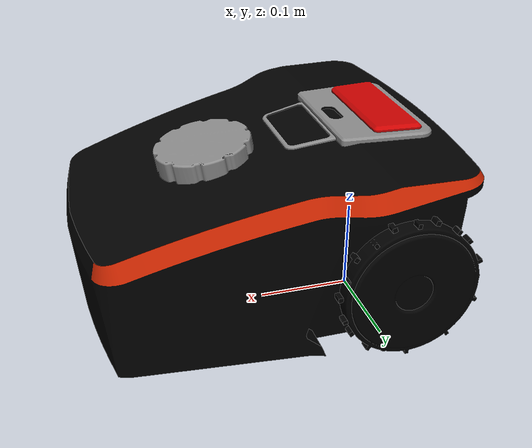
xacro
<?xml version="1.0"?>
<robot xmlns:xacro="http://www.ros.org/wiki/xacro"  name="robot">

    <xacro:property name="m1" value="5"/>   <!-- mass of body-->
    <xacro:property name="mw" value="0.168"/> <!-- mass of wheels-->

    <!-- Estimated Inertia-->
    <xacro:property name="Ix_body" value="{(1/12)*m1*(0.3*0.3+0.2*0.2)}"/>
    <xacro:property name="Iy_body" value="{(1/12)*m1*(0.4*0.4+0.3*0.3)}"/>
    <xacro:property name="Iz_body" value="{(1/12)*m1*(0.4*0.4+0.2*0.2)}"/>

    <xacro:property name="skid_mass" value="0.05"/> <!-- Mass of each skid -->
    <xacro:property name="skid_radius" value="0.02"/> <!-- Radius of the skid (capsule) -->
    <xacro:property name="skid_length" value="0.1"/> <!-- Length of the skid (capsule) -->

    <!-- Calculate Inertia for a Capsule -->
    <xacro:property name="inertia_xx" value="${(1/12) * skid_mass * (3 * skid_radius * skid_radius + skid_length * skid_length)}"/>
    <xacro:property name="inertia_yy" value="${(1/12) * skid_mass * (3 * skid_radius * skid_radius + skid_length * skid_length)}"/>
    <xacro:property name="inertia_zz" value="${(1/2) * skid_mass * skid_radius * skid_radius}"/>

    <!-- Wheel Inertia (calculated) -->
    <xacro:property name="radius_wheel" value="0.08"/>  <!-- radius of wheel -->
    <xacro:property name="Ixx_wheel" value="${(1.0/4.0) * mw * radius_wheel * radius_wheel}"/> <!-- inertia about x-axis -->
    <xacro:property name="Iyy_wheel" value="${(1.0/4.0) * mw * radius_wheel * radius_wheel}"/> <!-- inertia about y-axis -->
    <xacro:property name="Izz_wheel" value="${(1.0/2.0) * mw * radius_wheel * radius_wheel}"/> <!-- inertia about z-axis -->

    <xacro:macro name="inertia_body">
        <inertial>
            <origin xyz="0.15 0.0 0.06" rpy="0.0 0.0 0.0"/>
            <mass value="${m1}"/>
            <inertia ixx="${Ix_body}" ixy="0.0" ixz="0.0" iyy="${Iy_body}" iyz="0.0" izz="${Iz_body}"/>
        </inertial>
    </xacro:macro>

    <xacro:macro name="inertia_wheel">
        <inertial>
            <origin xyz="0.0 0.0 0.0" rpy="1.5707 0.0 0.0"/>
            <mass value="${mw}"/>
            <inertia ixx="${Ixx_wheel}" ixy="0.0" ixz="0.0" iyy="${Iyy_wheel}" iyz="0.0" izz="${Izz_wheel}"/>
        </inertial>
    </xacro:macro>

    <!-- Base link -->
    <link name="base_link">
        <inertial>
            <mass value="0.00001"/>  <!-- Minimal mass to satisfy Gazebo -->
            <inertia ixx="1e-6" ixy="0.0" ixz="0.0" iyy="1e-6" iyz="0.0" izz="1e-6"/>
        </inertial>
    </link>

    <link name="chassis">
        <visual>
            <origin xyz="0.025 0.175 -0.050" rpy="0 0 0"/>
            <geometry>
                <mesh filename="package://lawn_robot_project/meshes/base.dae" scale="0.001 0.001 0.001"/>
            </geometry>
        </visual>

        <collision>
            <origin xyz="0.215 0.0 0.06" rpy="0.0 0.0 0.0"/>
            <geometry>
                <box size="0.38 0.3 0.2"/>
            </geometry>
        </collision>
    </link>

    <joint name="chassis_joint" type="fixed">
        <parent link="base_link"/>
        <child link="chassis"/>
        <origin xyz="-0.1 0 0.08"/>
    </joint>

    <!-- LEFT WHEEL -->
    <joint name="left_wheel_joint" type="continuous">
        <parent link="chassis"/>
        <child link="left_wheel"/>
        <origin xyz="0.1 0.13 0" rpy="-${pi/2} 0 0"/>
        <axis xyz="0 0 1"/>
    </joint>

    <link name="left_wheel">
        <visual>
            <origin xyz="-0.08 -0.08 0" rpy="0 0 0"/>
            <geometry>
                <mesh filename="package://lawn_robot_project/meshes/wheel.dae" scale="0.001 0.001 0.001"/>
            </geometry>
        </visual>

        <collision>
            <origin xyz="0 0 0.01" rpy="0 0 0"/>
            <geometry>
                <cylinder radius="0.08" length="0.04"/>
            </geometry>
        </collision>
        <xacro:inertia_wheel />
    </link>

    <!-- RIGHT WHEEL -->
    <joint name="right_wheel_joint" type="continuous">
        <parent link="chassis"/>
        <child link="right_wheel"/>
        <origin xyz="0.1 -0.13 0" rpy="${pi/2} 0 0"/>
        <axis xyz="0 0 -1"/>
    </joint>

    <link name="right_wheel">
        <visual>
            <origin xyz="-0.08 -0.08 0" rpy="0 0 0"/>
            <geometry>
                <mesh filename="package://lawn_robot_project/meshes/wheel.dae" scale="0.001 0.001 0.001"/>
            </geometry>
        </visual>

        <collision>
            <origin xyz="0 0 0.01" rpy="0 0 0"/>
            <geometry>
                <cylinder radius="0.08" length="0.04"/>
            </geometry>
        </collision>
        <xacro:inertia_wheel />
    </link>

    <!-- LEFT SKID -->
    <link name="left_skid">
        <collision>
            <origin xyz="0.0 0.0 0.00" rpy="0 0 0"/>
        <geometry>
            <cylinder radius="${skid_radius}" length="${skid_length}"/>
        </geometry>
        </collision>
        <inertial>
            <origin xyz="0.0 0.0 0.00" rpy="0 0 0"/>
            <mass value="${skid_mass}"/>
            <inertia ixx="${inertia_xx}" ixy="0.0" ixz="0.0" iyy="${inertia_yy}" iyz="0.0" izz="${inertia_zz}"/>
        </inertial>
    </link>

    <joint name="left_skid_joint" type="fixed">
        <parent link="chassis"/>
        <child link="left_skid"/>
        <origin xyz="0.3 -0.1 -0.03" rpy="0 0 0"/>
    </joint>

    <!-- RIGHT SKID -->
    <link name="right_skid">
        <collision>
            <origin xyz="0 0 0.0" rpy="0 0 0"/>
            <geometry>
                <cylinder radius="${skid_radius}" length="${skid_length}"/>
            </geometry>
        </collision>
        <inertial>
            <origin xyz="0 0 0.00" rpy="0 0 0"/>
            <mass value="${skid_mass}"/>
            <inertia ixx="${inertia_xx}" ixy="0.0" ixz="0.0" iyy="${inertia_yy}" iyz="0.0" izz="${inertia_zz}"/>
        </inertial>
    </link>

    <joint name="right_skid_joint" type="fixed">
        <parent link="chassis"/>
        <child link="right_skid"/>
        <origin xyz="0.3 0.1 -0.03" rpy="0 0 0"/>
    </joint>

  <joint type="fixed" name="scan_joint_left">
    <origin xyz="0.18 0.08 0.17" rpy="0 0 0"/>
    <child link="scan_link_left"/>
    <parent link="base_link"/>
    <axis xyz="0 1 0" rpy="0 0 0"/>
  </joint>

  <link name='scan_link_left'>
    <inertial>
      <mass value="1e-5"/>
      <origin xyz="0 0 0" rpy="0 0 0"/>
      <inertia
          ixx="1e-6" ixy="0" ixz="0"
          iyy="1e-6" iyz="0"
          izz="1e-6"
      />
    </inertial>
    <collision name='collision'>
      <origin xyz="0 0 0" rpy="0 0 0"/>
      <geometry>
        <box size=".01 .01 .01"/>
      </geometry>
    </collision>

  </link>

  <gazebo reference="scan_link_left">
    <selfCollide>false</selfCollide>
    <mu1 value="0.05" />
    <mu2 value="0.05" />
  </gazebo>

  <joint type="fixed" name="scan_joint_right">
    <origin xyz="0.18 -0.08 0.17" rpy="0 0 0"/>
    <child link="scan_link_right"/>
    <parent link="base_link"/>
    <axis xyz="0 1 0" rpy="0 0 0"/>
  </joint>

  <link name='scan_link_right'>
    <inertial>
      <mass value="1e-5"/>
      <origin xyz="0 0 0" rpy="0 0 0"/>
      <inertia
          ixx="1e-6" ixy="0" ixz="0"
          iyy="1e-6" iyz="0"
          izz="1e-6"
      />
    </inertial>
    <collision name='collision'>
      <origin xyz="0 0 0" rpy="0 0 0"/>
      <geometry>
        <box size=".01 .01 .01"/>
      </geometry>
    </collision>

  </link>

  <gazebo reference="scan_link_right">
    <selfCollide>false</selfCollide>
    <mu1 value="0.05" />
    <mu2 value="0.05" />
  </gazebo>

   <!-- IMU -->
  <joint name="imu_joint" type="fixed">
    <origin xyz="0 0 0" rpy="0 0 0" />
    <parent link="base_link"/>
    <child link="imu_link" />
  </joint>

  <link name="imu_link">
  </link>

  <xacro:include filename="$(find lawn_robot_project)/description/robot.gazebo"/>

</robot>
